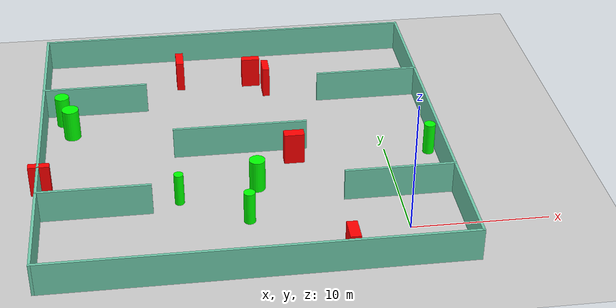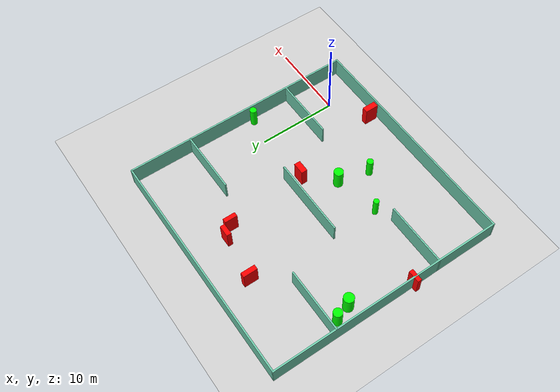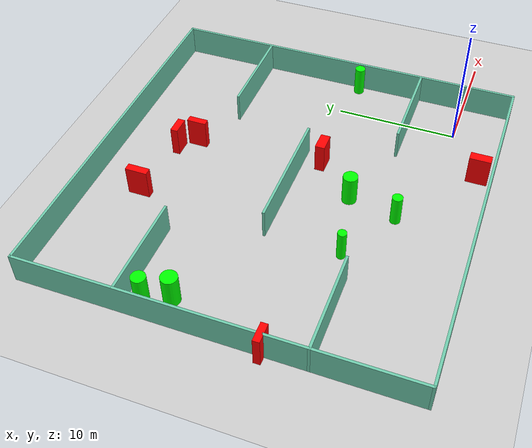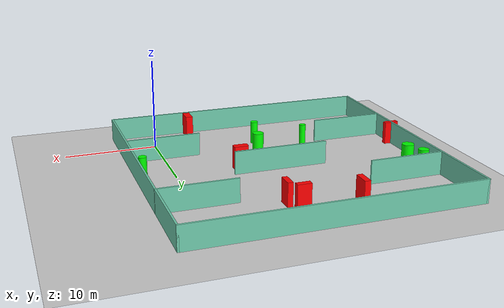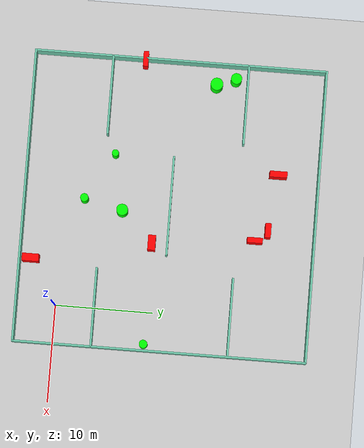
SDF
<sdf version="1.7">
 <world name="default">
  <light name="sun" type="directional">
   <pose>0 0 10 0 -0 0</pose>
   <diffuse>0.8 0.8 0.8 1</diffuse>
   <specular>0.2 0.2 0.2 1</specular>
   <attenuation>
    <range>1000</range>
    <constant>0.9</constant>
    <linear>0.01</linear>
    <quadratic>0.001</quadratic>
   </attenuation>
   <direction>-0.5 0.1 -0.9</direction>
   <spot><inner_angle>0</inner_angle><outer_angle>0</outer_angle><falloff>0</falloff></spot>
  </light>
  <model name="ground_plane">
   <static>1</static>
   <link name="link">
    <collision name="collision">
     <geometry><plane><normal>0 0 1</normal><size>100 100</size></plane></geometry>
     <surface>
      <contact><collide_bitmask>65535</collide_bitmask></contact>
      <friction><ode><mu>100</mu><mu2>50</mu2></ode></friction>
     </surface>
    </collision>
    <visual name="visual">
     <cast_shadows>0</cast_shadows>
     <geometry><plane><normal>0 0 1</normal><size>100 100</size></plane></geometry>
     <material>
      <script><uri>file://media/materials/scripts/gazebo.material</uri><name>Gazebo/Grey</name></script>
     </material>
    </visual>
   </link>
  </model>
  <gravity>0 0 -9.8</gravity>
  <magnetic_field>6e-06 2.3e-05 -4.2e-05</magnetic_field>
  <atmosphere type="adiabatic"/>
  <physics type="ode">
   <max_step_size>0.001</max_step_size>
   <real_time_factor>1</real_time_factor>
   <real_time_update_rate>1000</real_time_update_rate>
  </physics>
  <scene><ambient>0.4 0.4 0.4 1</ambient><background>0.7 0.7 0.7 1</background><shadows>1</shadows></scene>
  <spherical_coordinates>
   <surface_model>EARTH_WGS84</surface_model>
   <latitude_deg>0</latitude_deg>
   <longitude_deg>0</longitude_deg>
   <elevation>0</elevation>
   <heading_deg>0</heading_deg>
  </spherical_coordinates>
  <model name="my_base_walls">
   <link name="Wall_10">
    <collision name="Wall_10_Collision">
     <geometry><box><size>8.2 0.2 2.5</size></box></geometry>
     <pose>0 0 1.25 0 -0 0</pose>
    </collision>
    <visual name="Wall_10_Visual">
     <pose>0 0 1.25 0 -0 0</pose>
     <geometry><box><size>8.2 0.2 2.5</size></box></geometry>
     <material>
      <script><uri>file://media/materials/scripts/gazebo.material</uri><name>Gazebo/Grey</name></script>
      <ambient>0.435294 0.796078 0.67451 1</ambient>
     </material>
     <meta><layer>0</layer></meta>
    </visual>
    <pose>-11 -7 0 0 -0 0</pose>
   </link>
   <link name="Wall_12">
    <collision name="Wall_12_Collision">
     <geometry><box><size>8.2 0.2 2.5</size></box></geometry>
     <pose>0 0 1.25 0 -0 0</pose>
    </collision>
    <visual name="Wall_12_Visual">
     <pose>0 0 1.25 0 -0 0</pose>
     <geometry><box><size>8.2 0.2 2.5</size></box></geometry>
     <material>
      <script><uri>file://media/materials/scripts/gazebo.material</uri><name>Gazebo/Grey</name></script>
      <ambient>0.435294 0.796078 0.67451 1</ambient>
     </material>
     <meta><layer>0</layer></meta>
    </visual>
    <pose>-11 7 0 0 -0 0</pose>
   </link>
   <link name="Wall_14">
    <collision name="Wall_14_Collision">
     <geometry><box><size>8.2 0.2 2.5</size></box></geometry>
     <pose>0 0 1.25 0 -0 0</pose>
    </collision>
    <visual name="Wall_14_Visual">
     <pose>0 0 1.25 0 -0 0</pose>
     <geometry><box><size>8.2 0.2 2.5</size></box></geometry>
     <material>
      <script><uri>file://media/materials/scripts/gazebo.material</uri><name>Gazebo/Grey</name></script>
      <ambient>0.435294 0.796078 0.67451 1</ambient>
     </material>
     <meta><layer>0</layer></meta>
    </visual>
    <pose>11 7 0 0 -0 3.14159</pose>
   </link>
   <link name="Wall_16">
    <collision name="Wall_16_Collision">
     <geometry><box><size>10.2 0.2 2.5</size></box></geometry>
     <pose>0 0 1.25 0 -0 0</pose>
    </collision>
    <visual name="Wall_16_Visual">
     <pose>0 0 1.25 0 -0 0</pose>
     <geometry><box><size>10.2 0.2 2.5</size></box></geometry>
     <material>
      <script><uri>file://media/materials/scripts/gazebo.material</uri><name>Gazebo/Grey</name></script>
      <ambient>0.435294 0.796078 0.67451 1</ambient>
     </material>
     <meta><layer>0</layer></meta>
    </visual>
    <pose>0 0 0 0 -0 3.14159</pose>
   </link>
   <link name="Wall_2">
    <collision name="Wall_2_Collision">
     <geometry><box><size>30.2 0.2 2.5</size></box></geometry>
     <pose>0 0 1.25 0 -0 0</pose>
    </collision>
    <visual name="Wall_2_Visual">
     <pose>0 0 1.25 0 -0 0</pose>
     <geometry><box><size>30.2 0.2 2.5</size></box></geometry>
     <material>
      <script><uri>file://media/materials/scripts/gazebo.material</uri><name>Gazebo/Grey</name></script>
      <ambient>0.435294 0.796078 0.67451 1</ambient>
     </material>
     <meta><layer>0</layer></meta>
    </visual>
    <pose>0 -15 0 0 -0 3.14159</pose>
   </link>
   <link name="Wall_3">
    <collision name="Wall_3_Collision">
     <geometry><box><size>30.2 0.2 2.5</size></box></geometry>
     <pose>0 0 1.25 0 -0 0</pose>
    </collision>
    <visual name="Wall_3_Visual">
     <pose>0 0 1.25 0 -0 0</pose>
     <geometry><box><size>30.2 0.2 2.5</size></box></geometry>
     <material>
      <script><uri>file://media/materials/scripts/gazebo.material</uri><name>Gazebo/Grey</name></script>
      <ambient>0.435294 0.796078 0.67451 1</ambient>
     </material>
     <meta><layer>0</layer></meta>
    </visual>
    <pose>-15 0 0 0 -0 1.5708</pose>
   </link>
   <link name="Wall_4">
    <collision name="Wall_4_Collision">
     <geometry><box><size>30.2 0.2 2.5</size></box></geometry>
     <pose>0 0 1.25 0 -0 0</pose>
    </collision>
    <visual name="Wall_4_Visual">
     <pose>0 0 1.25 0 -0 0</pose>
     <geometry><box><size>30.2 0.2 2.5</size></box></geometry>
     <material>
      <script><uri>file://media/materials/scripts/gazebo.material</uri><name>Gazebo/Grey</name></script>
      <ambient>0.435294 0.796078 0.67451 1</ambient>
     </material>
     <meta><layer>0</layer></meta>
    </visual>
    <pose>0 15 0 0 -0 0</pose>
   </link>
   <link name="Wall_6">
    <collision name="Wall_6_Collision">
     <geometry><box><size>30.2 0.2 2.5</size></box></geometry>
     <pose>0 0 1.25 0 -0 0</pose>
    </collision>
    <visual name="Wall_6_Visual">
     <pose>0 0 1.25 0 -0 0</pose>
     <geometry><box><size>30.2 0.2 2.5</size></box></geometry>
     <material>
      <script><uri>file://media/materials/scripts/gazebo.material</uri><name>Gazebo/Grey</name></script>
      <ambient>0.435294 0.796078 0.67451 1</ambient>
     </material>
     <meta><layer>0</layer></meta>
    </visual>
    <pose>15 0 0 0 -0 1.5708</pose>
   </link>
   <link name="Wall_8">
    <collision name="Wall_8_Collision">
     <geometry><box><size>8.2 0.2 2.5</size></box></geometry>
     <pose>0 0 1.25 0 -0 0</pose>
    </collision>
    <visual name="Wall_8_Visual">
     <pose>0 0 1.25 0 -0 0</pose>
     <geometry><box><size>8.2 0.2 2.5</size></box></geometry>
     <material>
      <script><uri>file://media/materials/scripts/gazebo.material</uri><name>Gazebo/Grey</name></script>
      <ambient>0.435294 0.796078 0.67451 1</ambient>
     </material>
     <meta><layer>0</layer></meta>
    </visual>
    <pose>11 -7 0 0 -0 3.14159</pose>
   </link>
   <static>1</static>
   <pose>-11 11 0 0 -0 0</pose>
  </model>
  <model name="cylinder1">
   <static>1</static>
   <link name="link">
    <inertial>
     <mass>1</mass>
     <inertia><ixx>0.5</ixx><ixy>0</ixy><ixz>0</ixz><iyy>0.5</iyy><iyz>0</iyz><izz>1</izz></inertia>
    </inertial>
    <collision name="collision">
     <geometry><cylinder><radius>0.35263264186212423</radius><length>2.5</length></cylinder></geometry>
    </collision>
    <visual name="visual">
     <geometry><cylinder><radius>0.35263264186212423</radius><length>2.5</length></cylinder></geometry>
     <material>
      <ambient>0 1 0 1</ambient>
      <diffuse>0 1 0 1</diffuse>
      <specular>0.1 0.1 0.1 1</specular>
      <emissive>0 0 0 0</emissive>
     </material>
    </visual>
   </link>
   <pose>-15.973946567086609 4.986041218234204 1.25 0 0 0</pose>
  </model>
  <model name="cylinder2">
   <static>1</static>
   <link name="link">
    <inertial>
     <mass>1</mass>
     <inertia><ixx>0.5</ixx><ixy>0</ixy><ixz>0</ixz><iyy>0.5</iyy><iyz>0</iyz><izz>1</izz></inertia>
    </inertial>
    <collision name="collision">
     <geometry><cylinder><radius>0.5597452948081008</radius><length>2.5</length></cylinder></geometry>
    </collision>
    <visual name="visual">
     <geometry><cylinder><radius>0.5597452948081008</radius><length>2.5</length></cylinder></geometry>
     <material>
      <ambient>0 1 0 1</ambient>
      <diffuse>0 1 0 1</diffuse>
      <specular>0.1 0.1 0.1 1</specular>
      <emissive>0 0 0 0</emissive>
     </material>
    </visual>
   </link>
   <pose>-24.580814365762837 16.788277700636137 1.25 0 0 0</pose>
  </model>
  <model name="cylinder3">
   <static>1</static>
   <link name="link">
    <inertial>
     <mass>1</mass>
     <inertia><ixx>0.5</ixx><ixy>0</ixy><ixz>0</ixz><iyy>0.5</iyy><iyz>0</iyz><izz>1</izz></inertia>
    </inertial>
    <collision name="collision">
     <geometry><cylinder><radius>0.4180772593285573</radius><length>2.5</length></cylinder></geometry>
    </collision>
    <visual name="visual">
     <geometry><cylinder><radius>0.4180772593285573</radius><length>2.5</length></cylinder></geometry>
     <material>
      <ambient>0 1 0 1</ambient>
      <diffuse>0 1 0 1</diffuse>
      <specular>0.1 0.1 0.1 1</specular>
      <emissive>0 0 0 0</emissive>
     </material>
    </visual>
   </link>
   <pose>-11.15741840136037 2.1699508164611867 1.25 0 0 0</pose>
  </model>
  <model name="cylinder4">
   <static>1</static>
   <link name="link">
    <inertial>
     <mass>1</mass>
     <inertia><ixx>0.5</ixx><ixy>0</ixy><ixz>0</ixz><iyy>0.5</iyy><iyz>0</iyz><izz>1</izz></inertia>
    </inertial>
    <collision name="collision">
     <geometry><cylinder><radius>0.643347805653766</radius><length>2.5</length></cylinder></geometry>
    </collision>
    <visual name="visual">
     <geometry><cylinder><radius>0.643347805653766</radius><length>2.5</length></cylinder></geometry>
     <material>
      <ambient>0 1 0 1</ambient>
      <diffuse>0 1 0 1</diffuse>
      <specular>0.1 0.1 0.1 1</specular>
      <emissive>0 0 0 0</emissive>
     </material>
    </visual>
   </link>
   <pose>-23.876899838472223 14.819115497458863 1.25 0 0 0</pose>
  </model>
  <model name="cylinder5">
   <static>1</static>
   <link name="link">
    <inertial>
     <mass>1</mass>
     <inertia><ixx>0.5</ixx><ixy>0</ixy><ixz>0</ixz><iyy>0.5</iyy><iyz>0</iyz><izz>1</izz></inertia>
    </inertial>
    <collision name="collision">
     <geometry><cylinder><radius>0.42837895472398024</radius><length>2.5</length></cylinder></geometry>
    </collision>
    <visual name="visual">
     <geometry><cylinder><radius>0.42837895472398024</radius><length>2.5</length></cylinder></geometry>
     <material>
      <ambient>0 1 0 1</ambient>
      <diffuse>0 1 0 1</diffuse>
      <specular>0.1 0.1 0.1 1</specular>
      <emissive>0 0 0 0</emissive>
     </material>
    </visual>
   </link>
   <pose>3.340772131348057 9.349056086314633 1.25 0 0 0</pose>
  </model>
  <model name="cylinder6">
   <static>1</static>
   <link name="link">
    <inertial>
     <mass>1</mass>
     <inertia><ixx>0.5</ixx><ixy>0</ixy><ixz>0</ixz><iyy>0.5</iyy><iyz>0</iyz><izz>1</izz></inertia>
    </inertial>
    <collision name="collision">
     <geometry><cylinder><radius>0.5927809617419806</radius><length>2.5</length></cylinder></geometry>
    </collision>
    <visual name="visual">
     <geometry><cylinder><radius>0.5927809617419806</radius><length>2.5</length></cylinder></geometry>
     <material>
      <ambient>0 1 0 1</ambient>
      <diffuse>0 1 0 1</diffuse>
      <specular>0.1 0.1 0.1 1</specular>
      <emissive>0 0 0 0</emissive>
     </material>
    </visual>
   </link>
   <pose>-10.205902129273774 6.129653047458721 1.25 0 0 0</pose>
  </model>
  <model name="box1">
   <static>1</static>
   <link name="link">
    <inertial>
     <mass>1</mass>
     <inertia><ixx>0.083</ixx><ixy>0</ixy><ixz>0</ixz><iyy>0.083</iyy><iyz>0</iyz><izz>0.083</izz></inertia>
    </inertial>
    <collision name="collision">
     <geometry><box><size>0.7719083429364917 1.7205629837300946 2.5</size></box></geometry>
    </collision>
    <visual name="visual">
     <geometry><box><size>0.7719083429364917 1.7205629837300946 2.5</size></box></geometry>
     <material>
      <ambient>1 0 0 1</ambient>
      <diffuse>1 0 0 1</diffuse>
      <specular>0.1 0.1 0.1 1</specular>
      <emissive>0 0 0 0</emissive>
     </material>
    </visual>
    <sensor name="my_contact" type="contact">
     <contact><collision>box_collision</collision><topic>__default_topic__</topic></contact>
    </sensor>
   </link>
   <pose>-4.626062053157414 -2.8496889126736167 1.25 0 0 0</pose>
  </model>
  <model name="box2">
   <static>1</static>
   <link name="link">
    <inertial>
     <mass>1</mass>
     <inertia><ixx>0.083</ixx><ixy>0</ixy><ixz>0</ixz><iyy>0.083</iyy><iyz>0</iyz><izz>0.083</izz></inertia>
    </inertial>
    <collision name="collision">
     <geometry><box><size>1.550742562694911 0.5337260244239139 2.5</size></box></geometry>
    </collision>
    <visual name="visual">
     <geometry><box><size>1.550742562694911 0.5337260244239139 2.5</size></box></geometry>
     <material>
      <ambient>1 0 0 1</ambient>
      <diffuse>1 0 0 1</diffuse>
      <specular>0.1 0.1 0.1 1</specular>
      <emissive>0 0 0 0</emissive>
     </material>
    </visual>
    <sensor name="my_contact" type="contact">
     <contact><collision>box_collision</collision><topic>__default_topic__</topic></contact>
    </sensor>
   </link>
   <pose>-25.941908392954367 7.344706191877705 1.25 0 0 0</pose>
  </model>
  <model name="box3">
   <static>1</static>
   <link name="link">
    <inertial>
     <mass>1</mass>
     <inertia><ixx>0.083</ixx><ixy>0</ixy><ixz>0</ixz><iyy>0.083</iyy><iyz>0</iyz><izz>0.083</izz></inertia>
    </inertial>
    <collision name="collision">
     <geometry><box><size>1.5398732151000836 0.7853006896721788 2.5</size></box></geometry>
    </collision>
    <visual name="visual">
     <geometry><box><size>1.5398732151000836 0.7853006896721788 2.5</size></box></geometry>
     <material>
      <ambient>1 0 0 1</ambient>
      <diffuse>1 0 0 1</diffuse>
      <specular>0.1 0.1 0.1 1</specular>
      <emissive>0 0 0 0</emissive>
     </material>
    </visual>
    <sensor name="my_contact" type="contact">
     <contact><collision>box_collision</collision><topic>__default_topic__</topic></contact>
    </sensor>
   </link>
   <pose>-7.084029467271122 9.406098300281156 1.25 0 0 0</pose>
  </model>
  <model name="box4">
   <static>1</static>
   <link name="link">
    <inertial>
     <mass>1</mass>
     <inertia><ixx>0.083</ixx><ixy>0</ixy><ixz>0</ixz><iyy>0.083</iyy><iyz>0</iyz><izz>0.083</izz></inertia>
    </inertial>
    <collision name="collision">
     <geometry><box><size>0.5534737262116028 1.593290978162728 2.5</size></box></geometry>
    </collision>
    <visual name="visual">
     <geometry><box><size>0.5534737262116028 1.593290978162728 2.5</size></box></geometry>
     <material>
      <ambient>1 0 0 1</ambient>
      <diffuse>1 0 0 1</diffuse>
      <specular>0.1 0.1 0.1 1</specular>
      <emissive>0 0 0 0</emissive>
     </material>
    </visual>
    <sensor name="my_contact" type="contact">
     <contact><collision>box_collision</collision><topic>__default_topic__</topic></contact>
    </sensor>
   </link>
   <pose>-8.13198857451187 19.928894599066123 1.25 0 0 0</pose>
  </model>
  <model name="box5">
   <static>1</static>
   <link name="link">
    <inertial>
     <mass>1</mass>
     <inertia><ixx>0.083</ixx><ixy>0</ixy><ixz>0</ixz><iyy>0.083</iyy><iyz>0</iyz><izz>0.083</izz></inertia>
    </inertial>
    <collision name="collision">
     <geometry><box><size>0.6217548059167093 1.8001256122488145 2.5</size></box></geometry>
    </collision>
    <visual name="visual">
     <geometry><box><size>0.6217548059167093 1.8001256122488145 2.5</size></box></geometry>
     <material>
      <ambient>1 0 0 1</ambient>
      <diffuse>1 0 0 1</diffuse>
      <specular>0.1 0.1 0.1 1</specular>
      <emissive>0 0 0 0</emissive>
     </material>
    </visual>
    <sensor name="my_contact" type="contact">
     <contact><collision>box_collision</collision><topic>__default_topic__</topic></contact>
    </sensor>
   </link>
   <pose>-15.075384245131529 21.8325995585631 1.25 0 0 0</pose>
  </model>
  <model name="box6">
   <static>1</static>
   <link name="link">
    <inertial>
     <mass>1</mass>
     <inertia><ixx>0.083</ixx><ixy>0</ixy><ixz>0</ixz><iyy>0.083</iyy><iyz>0</iyz><izz>0.083</izz></inertia>
    </inertial>
    <collision name="collision">
     <geometry><box><size>1.4683684764245708 0.6017145111518936 2.5</size></box></geometry>
    </collision>
    <visual name="visual">
     <geometry><box><size>1.4683684764245708 0.6017145111518936 2.5</size></box></geometry>
     <material>
      <ambient>1 0 0 1</ambient>
      <diffuse>1 0 0 1</diffuse>
      <specular>0.1 0.1 0.1 1</specular>
      <emissive>0 0 0 0</emissive>
     </material>
    </visual>
    <sensor name="my_contact" type="contact">
     <contact><collision>box_collision</collision><topic>__default_topic__</topic></contact>
    </sensor>
   </link>
   <pose>-9.240347780550309 21.19741188529039 1.25 0 0 0</pose>
  </model>
 </world>
</sdf>
